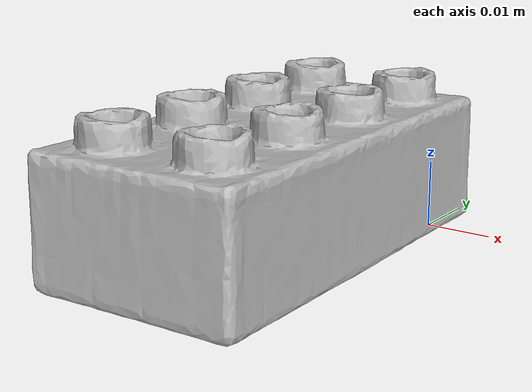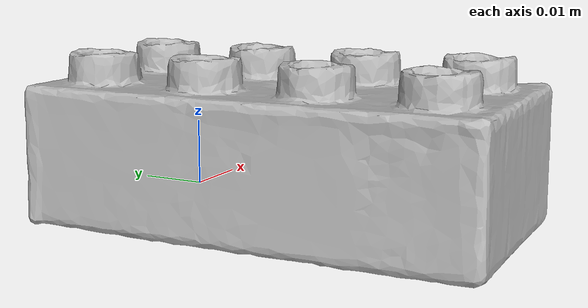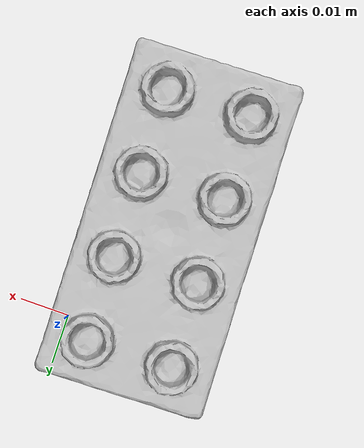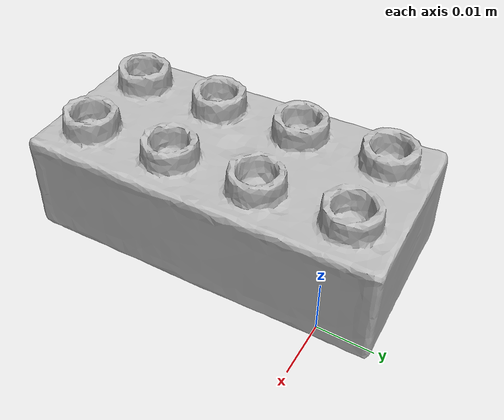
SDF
<?xml version='1.0'?>
<sdf version="1.4">
  <model name="c_lego_duplo">
    <static>false</static>
    <link name="link">
      <inertial>
        <pose>-0.013173349121726696 -0.022850899210760042 0.012672119612308665 -1.6575622910010874 -1.5635307534735945 0.1178732595526847</pose>
        <mass>2.377451853552e-05</mass>
        <inertia>
          <ixx>1.0815410280236383e-08</ixx>
          <ixy>-2.8749893030435203e-27</ixy>
          <ixz>-1.0582648687148845e-26</ixz>
          <iyy>9.171770793314739e-09</iyy>
          <iyz>-5.1424521739156905e-26</iyz>
          <izz>2.830202899055511e-09</izz>
        </inertia>
      </inertial>
      <collision name="collision">
        <geometry>
          <mesh>
            <!-- Use a downsampled mesh for collisions -->
            <uri>model://073-c_lego_duplo/google_16k/073-c_lego_duplo.obj</uri>
            </mesh>
        </geometry>
        <surface>
          <friction>
            <ode>
              <mu>0.9</mu>
              <mu2>0.9</mu2>
            </ode>
          </friction>
          <contact>
            <ode>
              <kp>1000000000000.0</kp>
              <kd>1</kd>
              <min_depth>0.0001</min_depth>
              <max_vel>0.01</max_vel>
            </ode>
          </contact>
          <bounce>
            <restitution_coefficient>0.1</restitution_coefficient>
            <threshold>1000.0</threshold>
          </bounce>
        </surface>
      </collision>
      <visual name="visual">
        <geometry>
          <mesh>
            <uri>model://073-c_lego_duplo/google_16k/073-c_lego_duplo.dae</uri>
            </mesh>
        </geometry>
      </visual>
    </link>
  </model>
</sdf>
